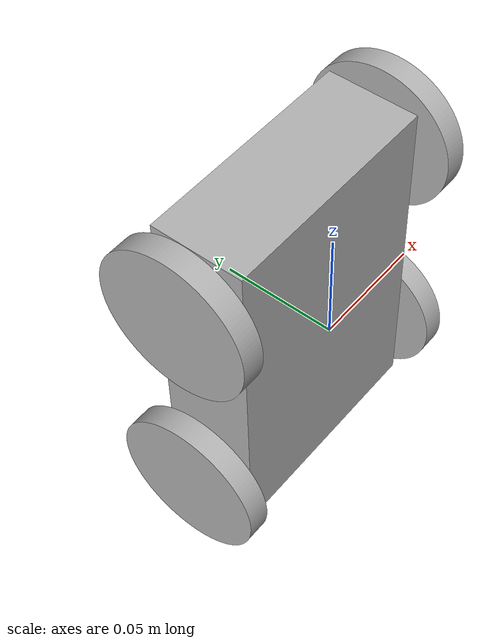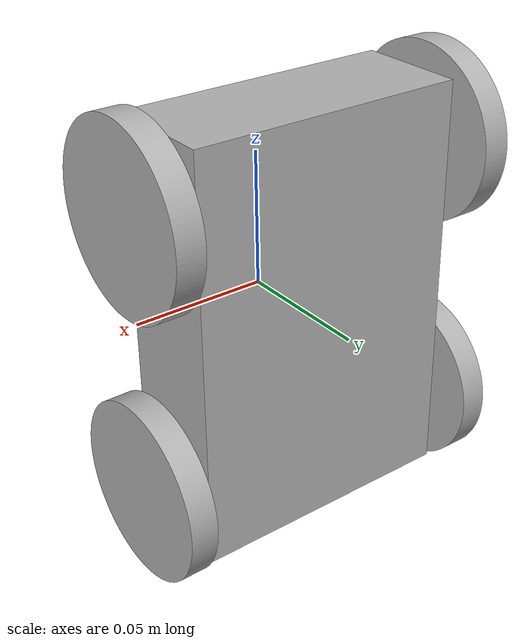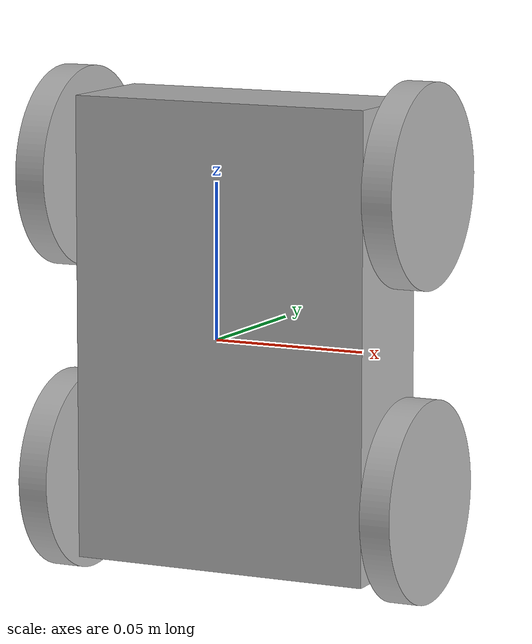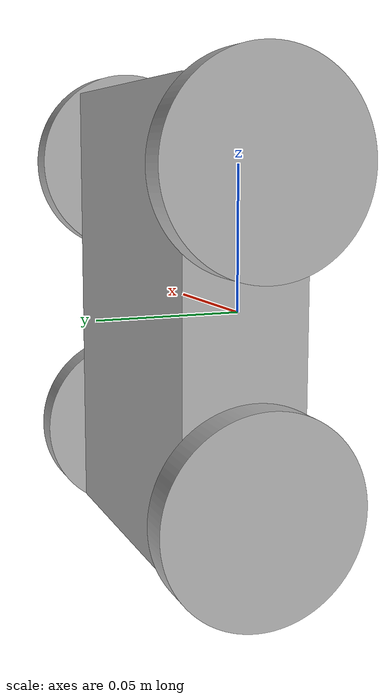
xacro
<?xml version="1.0" ?>
<robot name="mover" xmlns:xacro="http://www.ros.org/wiki/xacro">

<xacro:include filename="$(find mover_description)/urdf/materials.xacro" />
<xacro:include filename="$(find mover_description)/urdf/mover.ros2control" />
<xacro:include filename="$(find mover_description)/urdf/mover.gazebo" />
<link name="base_link">
  <inertial>
    <origin xyz="0.0 0.02 0.0" rpy="0 0 0"/>
    <mass value="0.6376650441064023"/>
    <inertia ixx="0.001281" iyy="0.001731" izz="0.000619" ixy="0.0" iyz="0.0" ixz="-0.0"/>
  </inertial>
  <visual>
    <origin xyz="0 0 0" rpy="0 0 0"/>
    <geometry>
      <mesh filename="file://$(find mover_description)/meshes/base_link.stl" scale="0.001 0.001 0.001"/>
    </geometry>
    <material name="silver"/>
  </visual>
  <collision>
    <origin xyz="0 0 0" rpy="0 0 0"/>
    <geometry>
      <mesh filename="file://$(find mover_description)/meshes/base_link.stl" scale="0.001 0.001 0.001"/>
    </geometry>
  </collision>
</link>

<link name="lwf_1">
  <inertial>
    <origin xyz="0.0049999999999999975 -1.0408340855860843e-17 0.0" rpy="0 0 0"/>
    <mass value="0.030860257335294242"/>
    <inertia ixx="1.6e-05" iyy="8e-06" izz="8e-06" ixy="0.0" iyz="0.0" ixz="0.0"/>
  </inertial>
  <visual>
    <origin xyz="-0.055 -0.02 -0.05" rpy="0 0 0"/>
    <geometry>
      <mesh filename="file://$(find mover_description)/meshes/lwf_1.stl" scale="0.001 0.001 0.001"/>
    </geometry>
    <material name="silver"/>
  </visual>
  <collision>
    <origin xyz="-0.055 -0.02 -0.05" rpy="0 0 0"/>
    <geometry>
      <mesh filename="file://$(find mover_description)/meshes/lwf_1.stl" scale="0.001 0.001 0.001"/>
    </geometry>
  </collision>
</link>

<link name="lwb_1">
  <inertial>
    <origin xyz="0.0049999999999999975 -1.0408340855860843e-17 0.0" rpy="0 0 0"/>
    <mass value="0.030860257335294242"/>
    <inertia ixx="1.6e-05" iyy="8e-06" izz="8e-06" ixy="0.0" iyz="0.0" ixz="0.0"/>
  </inertial>
  <visual>
    <origin xyz="-0.055 -0.02 0.05" rpy="0 0 0"/>
    <geometry>
      <mesh filename="file://$(find mover_description)/meshes/lwb_1.stl" scale="0.001 0.001 0.001"/>
    </geometry>
    <material name="silver"/>
  </visual>
  <collision>
    <origin xyz="-0.055 -0.02 0.05" rpy="0 0 0"/>
    <geometry>
      <mesh filename="file://$(find mover_description)/meshes/lwb_1.stl" scale="0.001 0.001 0.001"/>
    </geometry>
  </collision>
</link>

<link name="rwb_1">
  <inertial>
    <origin xyz="-0.005000000000000011 -1.0408340855860843e-17 0.0" rpy="0 0 0"/>
    <mass value="0.030860257335294242"/>
    <inertia ixx="1.6e-05" iyy="8e-06" izz="8e-06" ixy="0.0" iyz="0.0" ixz="0.0"/>
  </inertial>
  <visual>
    <origin xyz="0.055 -0.02 0.05" rpy="0 0 0"/>
    <geometry>
      <mesh filename="file://$(find mover_description)/meshes/rwb_1.stl" scale="0.001 0.001 0.001"/>
    </geometry>
    <material name="silver"/>
  </visual>
  <collision>
    <origin xyz="0.055 -0.02 0.05" rpy="0 0 0"/>
    <geometry>
      <mesh filename="file://$(find mover_description)/meshes/rwb_1.stl" scale="0.001 0.001 0.001"/>
    </geometry>
  </collision>
</link>

<link name="rwf_1">
  <inertial>
    <origin xyz="-0.005000000000000011 -1.0408340855860843e-17 0.0" rpy="0 0 0"/>
    <mass value="0.030860257335294242"/>
    <inertia ixx="1.6e-05" iyy="8e-06" izz="8e-06" ixy="0.0" iyz="0.0" ixz="-0.0"/>
  </inertial>
  <visual>
    <origin xyz="0.055 -0.02 -0.05" rpy="0 0 0"/>
    <geometry>
      <mesh filename="file://$(find mover_description)/meshes/rwf_1.stl" scale="0.001 0.001 0.001"/>
    </geometry>
    <material name="silver"/>
  </visual>
  <collision>
    <origin xyz="0.055 -0.02 -0.05" rpy="0 0 0"/>
    <geometry>
      <mesh filename="file://$(find mover_description)/meshes/rwf_1.stl" scale="0.001 0.001 0.001"/>
    </geometry>
  </collision>
</link>

<joint name="Revolute 1" type="continuous">
  <origin xyz="0.055 0.02 0.05" rpy="0 0 0"/>
  <parent link="base_link"/>
  <child link="lwf_1"/>
  <axis xyz="1.0 0.0 0.0"/>
</joint>

<joint name="Revolute 2" type="continuous">
  <origin xyz="0.055 0.02 -0.05" rpy="0 0 0"/>
  <parent link="base_link"/>
  <child link="lwb_1"/>
  <axis xyz="1.0 0.0 0.0"/>
</joint>

<joint name="Revolute 3" type="continuous">
  <origin xyz="-0.055 0.02 -0.05" rpy="0 0 0"/>
  <parent link="base_link"/>
  <child link="rwb_1"/>
  <axis xyz="-1.0 0.0 0.0"/>
</joint>

<joint name="Revolute 4" type="continuous">
  <origin xyz="-0.055 0.02 0.05" rpy="0 0 0"/>
  <parent link="base_link"/>
  <child link="rwf_1"/>
  <axis xyz="-1.0 0.0 0.0"/>
</joint>

</robot>

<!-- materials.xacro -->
<robot name="mover" xmlns:xacro="http://www.ros.org/wiki/xacro" >

<material name="silver">
  <color rgba="0.700 0.700 0.700 1.000"/>
</material>

</robot>

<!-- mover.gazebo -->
<robot name="mover" xmlns:xacro="http://www.ros.org/wiki/xacro" >

<xacro:property name="body_color" value="Gazebo/Silver" />

<gazebo reference="base_link">
  <material>${body_color}</material>
  <mu1>0.2</mu1>
  <mu2>0.2</mu2>
  <self_collide>true</self_collide>
  <gravity>true</gravity>
</gazebo>

<gazebo reference="lwf_1">
  <material>${body_color}</material>
  <mu1>0.2</mu1>
  <mu2>0.2</mu2>
  <self_collide>true</self_collide>
</gazebo>

<gazebo reference="lwb_1">
  <material>${body_color}</material>
  <mu1>0.2</mu1>
  <mu2>0.2</mu2>
  <self_collide>true</self_collide>
</gazebo>

<gazebo reference="rwb_1">
  <material>${body_color}</material>
  <mu1>0.2</mu1>
  <mu2>0.2</mu2>
  <self_collide>true</self_collide>
</gazebo>

<gazebo reference="rwf_1">
  <material>${body_color}</material>
  <mu1>0.2</mu1>
  <mu2>0.2</mu2>
  <self_collide>true</self_collide>
</gazebo>

</robot>
